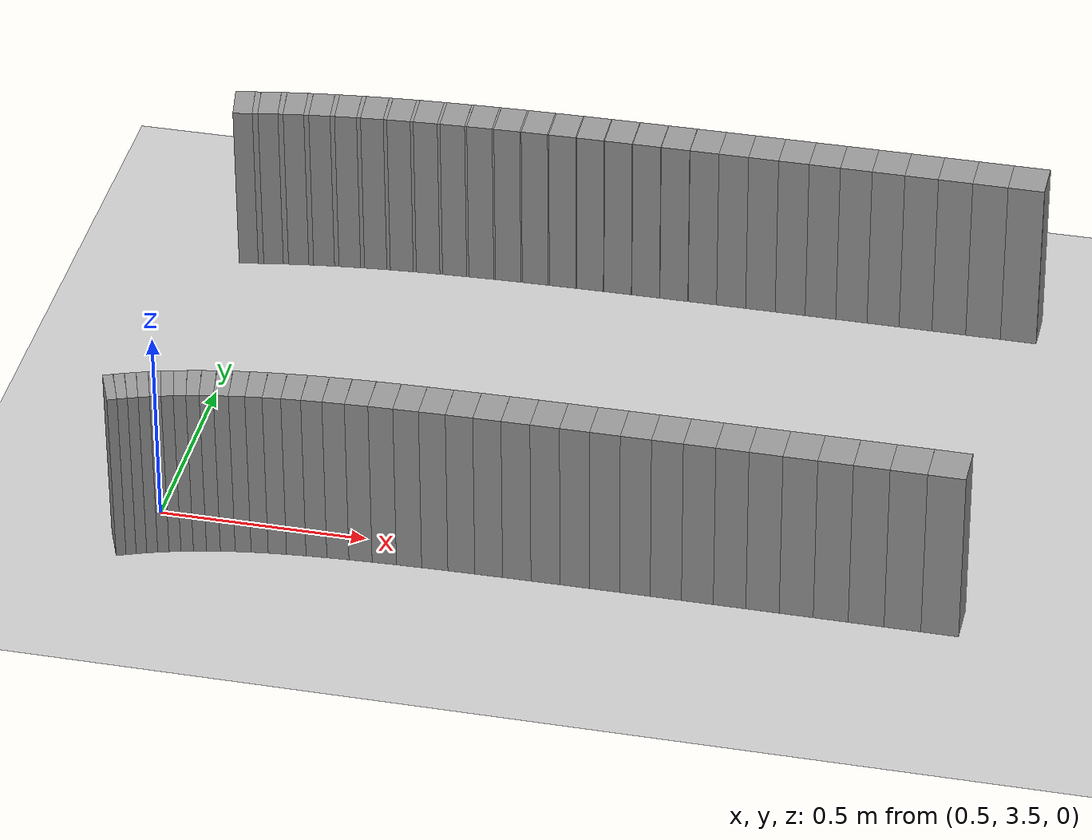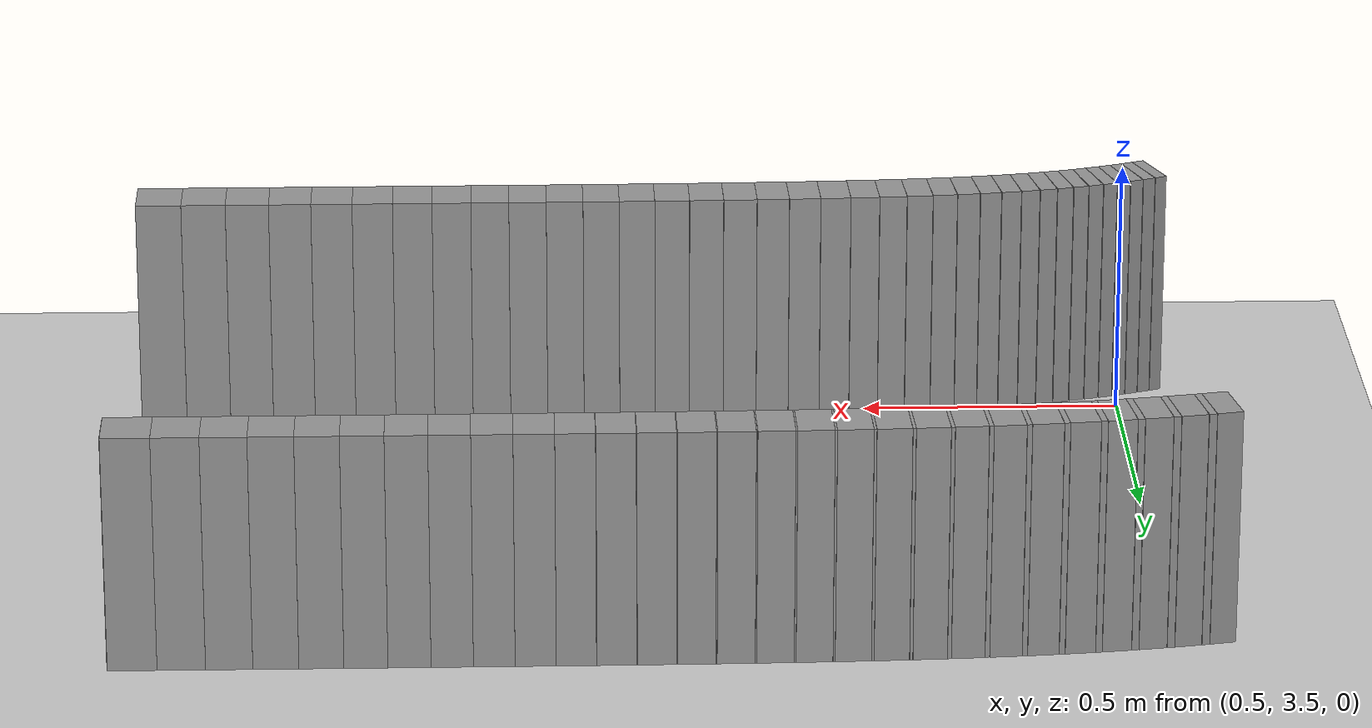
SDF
<sdf version="1.6">
 <world name="default">
  <include><uri>model://ground_plane</uri></include>
  <include><uri>model://sun</uri></include>
  <model name="wall_865_outward">
   <static>true</static>
   <link name="link">
    <collision name="collision">
     <geometry><box><size>0.08814726588899825 0.1 0.45</size></box></geometry>
    </collision>
    <visual name="visual">
     <geometry><box><size>0.08814726588899825 0.1 0.45</size></box></geometry>
     <material>
      <script><uri>file://media/materials/scripts/gazebo.material</uri><name>Gazebo/Gray</name></script>
     </material>
    </visual>
   </link>
   <pose>2.380222227202153 3.4742390977245243 0.225 0 0 3.1385229642362384</pose>
  </model>
  <model name="wall_866_outward">
   <static>true</static>
   <link name="link">
    <collision name="collision">
     <geometry><box><size>0.08610109189699643 0.1 0.45</size></box></geometry>
    </collision>
    <visual name="visual">
     <geometry><box><size>0.08610109189699643 0.1 0.45</size></box></geometry>
     <material>
      <script><uri>file://media/materials/scripts/gazebo.material</uri><name>Gazebo/Gray</name></script>
     </material>
    </visual>
   </link>
   <pose>2.2930983647943046 3.474471191679582 0.225 0 0 3.139344090066347</pose>
  </model>
  <model name="wall_867_outward">
   <static>true</static>
   <link name="link">
    <collision name="collision">
     <geometry><box><size>0.08406678609195667 0.1 0.45</size></box></geometry>
    </collision>
    <visual name="visual">
     <geometry><box><size>0.08406678609195667 0.1 0.45</size></box></geometry>
     <material>
      <script><uri>file://media/materials/scripts/gazebo.material</uri><name>Gazebo/Gray</name></script>
     </material>
    </visual>
   </link>
   <pose>2.2080145882157503 3.4746351096457238 0.225 0 0 3.139995918611105</pose>
  </model>
  <model name="wall_868_outward">
   <static>true</static>
   <link name="link">
    <collision name="collision">
     <geometry><box><size>0.08209183883756536 0.1 0.45</size></box></geometry>
    </collision>
    <visual name="visual">
     <geometry><box><size>0.08209183883756536 0.1 0.45</size></box></geometry>
     <material>
      <script><uri>file://media/materials/scripts/gazebo.material</uri><name>Gazebo/Gray</name></script>
     </material>
    </visual>
   </link>
   <pose>2.124935352999141 3.4747463017034472 0.225 0 0 3.1405188341605306</pose>
  </model>
  <model name="wall_869_outward">
   <static>true</static>
   <link name="link">
    <collision name="collision">
     <geometry><box><size>0.08021964719305823 0.1 0.45</size></box></geometry>
    </collision>
    <visual name="visual">
     <geometry><box><size>0.08021964719305823 0.1 0.45</size></box></geometry>
     <material>
      <script><uri>file://media/materials/scripts/gazebo.material</uri><name>Gazebo/Gray</name></script>
     </material>
    </visual>
   </link>
   <pose>2.0437796415892513 3.474815616370142 0.225 0 0 3.140963411952609</pose>
  </model>
  <model name="wall_870_outward">
   <static>true</static>
   <link name="link">
    <collision name="collision">
     <geometry><box><size>0.07847755730165017 0.1 0.45</size></box></geometry>
    </collision>
    <visual name="visual">
     <geometry><box><size>0.07847755730165017 0.1 0.45</size></box></geometry>
     <material>
      <script><uri>file://media/materials/scripts/gazebo.material</uri><name>Gazebo/Gray</name></script>
     </material>
    </visual>
   </link>
   <pose>1.9644310484204572 3.474850305059705 0.225 0 0 3.141351822438117</pose>
  </model>
  <model name="wall_871_outward">
   <static>true</static>
   <link name="link">
    <collision name="collision">
     <geometry><box><size>0.07687323410762861 0.1 0.45</size></box></geometry>
    </collision>
    <visual name="visual">
     <geometry><box><size>0.07687323410762861 0.1 0.45</size></box></geometry>
     <material>
      <script><uri>file://media/materials/scripts/gazebo.material</uri><name>Gazebo/Gray</name></script>
     </material>
    </visual>
   </link>
   <pose>1.8867556542720858 3.4748540840059294 0.225 0 0 -3.1414451126667786</pose>
  </model>
  <model name="wall_872_outward">
   <static>true</static>
   <link name="link">
    <collision name="collision">
     <geometry><box><size>0.07540982449161798 0.1 0.45</size></box></geometry>
    </collision>
    <visual name="visual">
     <geometry><box><size>0.07540982449161798 0.1 0.45</size></box></geometry>
     <material>
      <script><uri>file://media/materials/scripts/gazebo.material</uri><name>Gazebo/Gray</name></script>
     </material>
    </visual>
   </link>
   <pose>1.8106141318749573 3.474826300407479 0.225 0 0 -3.1410061882073346</pose>
  </model>
  <model name="wall_873_outward">
   <static>true</static>
   <link name="link">
    <collision name="collision">
     <geometry><box><size>0.07406763509247889 0.1 0.45</size></box></geometry>
    </collision>
    <visual name="visual">
     <geometry><box><size>0.07406763509247889 0.1 0.45</size></box></geometry>
     <material>
      <script><uri>file://media/materials/scripts/gazebo.material</uri><name>Gazebo/Gray</name></script>
     </material>
    </visual>
   </link>
   <pose>1.7358754321458298 3.4747623975490964 0.225 0 0 -3.1404642189452616</pose>
  </model>
  <model name="wall_874_outward">
   <static>true</static>
   <link name="link">
    <collision name="collision">
     <geometry><box><size>0.07282101729407345 0.1 0.45</size></box></geometry>
    </collision>
    <visual name="visual">
     <geometry><box><size>0.07282101729407345 0.1 0.45</size></box></geometry>
     <material>
      <script><uri>file://media/materials/scripts/gazebo.material</uri><name>Gazebo/Gray</name></script>
     </material>
    </visual>
   </link>
   <pose>1.6624311921575687 3.474653075822646 0.225 0 0 -3.1397379271987416</pose>
  </model>
  <model name="wall_875_outward">
   <static>true</static>
   <link name="link">
    <collision name="collision">
     <geometry><box><size>0.0716305171560759 0.1 0.45</size></box></geometry>
    </collision>
    <visual name="visual">
     <geometry><box><size>0.0716305171560759 0.1 0.45</size></box></geometry>
     <material>
      <script><uri>file://media/materials/scripts/gazebo.material</uri><name>Gazebo/Gray</name></script>
     </material>
    </visual>
   </link>
   <pose>1.5902056308034038 3.4744842493679564 0.225 0 0 -3.1387643870582966</pose>
  </model>
  <model name="wall_876_outward">
   <static>true</static>
   <link name="link">
    <collision name="collision">
     <geometry><box><size>0.07044924764524253 0.1 0.45</size></box></geometry>
    </collision>
    <visual name="visual">
     <geometry><box><size>0.07044924764524253 0.1 0.45</size></box></geometry>
     <material>
      <script><uri>file://media/materials/scripts/gazebo.material</uri><name>Gazebo/Gray</name></script>
     </material>
    </visual>
   </link>
   <pose>1.519166197084565 3.474236265196743 0.225 0 0 -3.1374282476381024</pose>
  </model>
  <model name="wall_877_outward">
   <static>true</static>
   <link name="link">
    <collision name="collision">
     <geometry><box><size>0.06923007070671246 0.1 0.45</size></box></geometry>
    </collision>
    <visual name="visual">
     <geometry><box><size>0.06923007070671246 0.1 0.45</size></box></geometry>
     <material>
      <script><uri>file://media/materials/scripts/gazebo.material</uri><name>Gazebo/Gray</name></script>
     </material>
    </visual>
   </link>
   <pose>1.4493274575164872 3.4738833753395157 0.225 0 0 -3.135635650641271</pose>
  </model>
  <model name="wall_878_outward">
   <static>true</static>
   <link name="link">
    <collision name="collision">
     <geometry><box><size>0.06791474529747309 0.1 0.45</size></box></geometry>
    </collision>
    <visual name="visual">
     <geometry><box><size>0.06791474529747309 0.1 0.45</size></box></geometry>
     <material>
      <script><uri>file://media/materials/scripts/gazebo.material</uri><name>Gazebo/Gray</name></script>
     </material>
    </visual>
   </link>
   <pose>1.38075684833437 3.4733935309941524 0.225 0 0 -3.1332396223157506</pose>
  </model>
  <model name="wall_879_outward">
   <static>true</static>
   <link name="link">
    <collision name="collision">
     <geometry><box><size>0.06646164676676616 0.1 0.45</size></box></geometry>
    </collision>
    <visual name="visual">
     <geometry><box><size>0.06646164676676616 0.1 0.45</size></box></geometry>
     <material>
      <script><uri>file://media/materials/scripts/gazebo.material</uri><name>Gazebo/Gray</name></script>
     </material>
    </visual>
   </link>
   <pose>1.3135720338396217 3.4727277826284513 0.225 0 0 -3.1300938988168046</pose>
  </model>
  <model name="wall_880_outward">
   <static>true</static>
   <link name="link">
    <collision name="collision">
     <geometry><box><size>0.0648284808082867 0.1 0.45</size></box></geometry>
    </collision>
    <visual name="visual">
     <geometry><box><size>0.0648284808082867 0.1 0.45</size></box></geometry>
     <material>
      <script><uri>file://media/materials/scripts/gazebo.material</uri><name>Gazebo/Gray</name></script>
     </material>
    </visual>
   </link>
   <pose>1.247933090677944 3.471841342200196 0.225 0 0 -3.1260329457450857</pose>
  </model>
  <model name="wall_881_outward">
   <static>true</static>
   <link name="link">
    <collision name="collision">
     <geometry><box><size>0.06297823563730758 0.1 0.45</size></box></geometry>
    </collision>
    <visual name="visual">
     <geometry><box><size>0.06297823563730758 0.1 0.45</size></box></geometry>
     <material>
      <script><uri>file://media/materials/scripts/gazebo.material</uri><name>Gazebo/Gray</name></script>
     </material>
    </visual>
   </link>
   <pose>1.184040410342023 3.4706848417528566 0.225 0 0 -3.12088037694755</pose>
  </model>
  <model name="wall_882_outward">
   <static>true</static>
   <link name="link">
    <collision name="collision">
     <geometry><box><size>0.060891050665584416 0.1 0.45</size></box></geometry>
    </collision>
    <visual name="visual">
     <geometry><box><size>0.060891050665584416 0.1 0.45</size></box></geometry>
     <material>
      <script><uri>file://media/materials/scripts/gazebo.material</uri><name>Gazebo/Gray</name></script>
     </material>
    </visual>
   </link>
   <pose>1.122123752488555 3.469205785106139 0.225 0 0 -3.114429592896092</pose>
  </model>
  <model name="wall_883_outward">
   <static>true</static>
   <link name="link">
    <collision name="collision">
     <geometry><box><size>0.05856185348694866 0.1 0.45</size></box></geometry>
    </collision>
    <visual name="visual">
     <geometry><box><size>0.05856185348694866 0.1 0.45</size></box></geometry>
     <material>
      <script><uri>file://media/materials/scripts/gazebo.material</uri><name>Gazebo/Gray</name></script>
     </material>
    </visual>
   </link>
   <pose>1.0624265653836569 3.4673513870126396 0.225 0 0 -3.1064941357454354</pose>
  </model>
  <model name="wall_884_outward">
   <static>true</static>
   <link name="link">
    <collision name="collision">
     <geometry><box><size>0.056002091373404554 0.1 0.45</size></box></geometry>
    </collision>
    <visual name="visual">
     <geometry><box><size>0.056002091373404554 0.1 0.45</size></box></geometry>
     <material>
      <script><uri>file://media/materials/scripts/gazebo.material</uri><name>Gazebo/Gray</name></script>
     </material>
    </visual>
   </link>
   <pose>1.0051906216219983 3.4650720876806678 0.225 0 0 -3.096872518828695</pose>
  </model>
  <model name="wall_885_outward">
   <static>true</static>
   <link name="link">
    <collision name="collision">
     <geometry><box><size>0.053244198982560914 0.1 0.45</size></box></geometry>
    </collision>
    <visual name="visual">
     <geometry><box><size>0.053244198982560914 0.1 0.45</size></box></geometry>
     <material>
      <script><uri>file://media/materials/scripts/gazebo.material</uri><name>Gazebo/Gray</name></script>
     </material>
    </visual>
   </link>
   <pose>0.9506374803704174 3.4623253111802317 0.225 0 0 -3.0854073722569035</pose>
  </model>
  <model name="wall_886_outward">
   <static>true</static>
   <link name="link">
    <collision name="collision">
     <geometry><box><size>0.050334506872166236 0.1 0.45</size></box></geometry>
    </collision>
    <visual name="visual">
     <geometry><box><size>0.050334506872166236 0.1 0.45</size></box></geometry>
     <material>
      <script><uri>file://media/materials/scripts/gazebo.material</uri><name>Gazebo/Gray</name></script>
     </material>
    </visual>
   </link>
   <pose>0.8989511349970929 3.4590791547636774 0.225 0 0 -3.0719549683346576</pose>
  </model>
  <model name="wall_887_outward">
   <static>true</static>
   <link name="link">
    <collision name="collision">
     <geometry><box><size>0.047342373089024746 0.1 0.45</size></box></geometry>
    </collision>
    <visual name="visual">
     <geometry><box><size>0.047342373089024746 0.1 0.45</size></box></geometry>
     <material>
      <script><uri>file://media/materials/scripts/gazebo.material</uri><name>Gazebo/Gray</name></script>
     </material>
    </visual>
   </link>
   <pose>0.8502594513527232 3.455314868062165 0.225 0 0 -3.0564449064776067</pose>
  </model>
  <model name="wall_888_outward">
   <static>true</static>
   <link name="link">
    <collision name="collision">
     <geometry><box><size>0.04434472673511183 0.1 0.45</size></box></geometry>
    </collision>
    <visual name="visual">
     <geometry><box><size>0.04434472673511183 0.1 0.45</size></box></geometry>
     <material>
      <script><uri>file://media/materials/scripts/gazebo.material</uri><name>Gazebo/Gray</name></script>
     </material>
    </visual>
   </link>
   <pose>0.8046185366642273 3.451028159454455 0.225 0 0 -3.0388702525209412</pose>
  </model>
  <model name="wall_889_outward">
   <static>true</static>
   <link name="link">
    <collision name="collision">
     <geometry><box><size>0.04142713516056422 0.1 0.45</size></box></geometry>
    </collision>
    <visual name="visual">
     <geometry><box><size>0.04142713516056422 0.1 0.45</size></box></geometry>
     <material>
      <script><uri>file://media/materials/scripts/gazebo.material</uri><name>Gazebo/Gray</name></script>
     </material>
    </visual>
   </link>
   <pose>0.7620041098598511 3.4462283349957445 0.225 0 0 -3.019328134915004</pose>
  </model>
  <model name="wall_890_outward">
   <static>true</static>
   <link name="link">
    <collision name="collision">
     <geometry><box><size>0.038671987007682394 0.1 0.45</size></box></geometry>
    </collision>
    <visual name="visual">
     <geometry><box><size>0.038671987007682394 0.1 0.45</size></box></geometry>
     <material>
      <script><uri>file://media/materials/scripts/gazebo.material</uri><name>Gazebo/Gray</name></script>
     </material>
    </visual>
   </link>
   <pose>0.7223081973423724 3.440934984638207 0.225 0 0 -2.9979923778146462</pose>
  </model>
  <model name="wall_891_outward">
   <static>true</static>
   <link name="link">
    <collision name="collision">
     <geometry><box><size>0.03615201267646341 0.1 0.45</size></box></geometry>
    </collision>
    <visual name="visual">
     <geometry><box><size>0.03615201267646341 0.1 0.45</size></box></geometry>
     <material>
      <script><uri>file://media/materials/scripts/gazebo.material</uri><name>Gazebo/Gray</name></script>
     </material>
    </visual>
   </link>
   <pose>0.6853450413730331 3.4351730080904375 0.225 0 0 -2.9751438679981823</pose>
  </model>
  <model name="wall_892_outward">
   <static>true</static>
   <link name="link">
    <collision name="collision">
     <geometry><box><size>0.03392593604339044 0.1 0.45</size></box></geometry>
    </collision>
    <visual name="visual">
     <geometry><box><size>0.03392593604339044 0.1 0.45</size></box></geometry>
     <material>
      <script><uri>file://media/materials/scripts/gazebo.material</uri><name>Gazebo/Gray</name></script>
     </material>
    </visual>
   </link>
   <pose>0.6508626301546203 3.4289668618690192 0.225 0 0 -2.9511313933653516</pose>
  </model>
  <model name="wall_893_outward">
   <static>true</static>
   <link name="link">
    <collision name="collision">
     <geometry><box><size>0.03201261778673584 0.1 0.45</size></box></geometry>
    </collision>
    <visual name="visual">
     <geometry><box><size>0.03201261778673584 0.1 0.45</size></box></geometry>
     <material>
      <script><uri>file://media/materials/scripts/gazebo.material</uri><name>Gazebo/Gray</name></script>
     </material>
    </visual>
   </link>
   <pose>0.6185693362083204 3.4223373757393283 0.225 0 0 -2.9263822162608992</pose>
  </model>
  <model name="wall_894_outward">
   <static>true</static>
   <link name="link">
    <collision name="collision">
     <geometry><box><size>0.030405992266613144 0.1 0.45</size></box></geometry>
    </collision>
    <visual name="visual">
     <geometry><box><size>0.030405992266613144 0.1 0.45</size></box></geometry>
     <material>
      <script><uri>file://media/materials/scripts/gazebo.material</uri><name>Gazebo/Gray</name></script>
     </material>
    </visual>
   </link>
   <pose>0.5881661216257676 3.415300896584763 0.225 0 0 -2.9012884889778827</pose>
  </model>
  <model name="wall_895_outward">
   <static>true</static>
   <link name="link">
    <collision name="collision">
     <geometry><box><size>0.029075045051389418 0.1 0.45</size></box></geometry>
    </collision>
    <visual name="visual">
     <geometry><box><size>0.029075045051389418 0.1 0.45</size></box></geometry>
     <material>
      <script><uri>file://media/materials/scripts/gazebo.material</uri><name>Gazebo/Gray</name></script>
     </material>
    </visual>
   </link>
   <pose>0.5593711948561099 3.4078704067380277 0.225 0 0 -2.876258046377365</pose>
  </model>
  <model name="wall_896_outward">
   <static>true</static>
   <link name="link">
    <collision name="collision">
     <geometry><box><size>0.027952202482216113 0.1 0.45</size></box></geometry>
    </collision>
    <visual name="visual">
     <geometry><box><size>0.027952202482216113 0.1 0.45</size></box></geometry>
     <material>
      <script><uri>file://media/materials/scripts/gazebo.material</uri><name>Gazebo/Gray</name></script>
     </material>
    </visual>
   </link>
   <pose>0.5319498568132395 3.4000618556043123 0.225 0 0 -2.851604028873288</pose>
  </model>
  <model name="wall_897_outward">
   <static>true</static>
   <link name="link">
    <collision name="collision">
     <geometry><box><size>0.026958116709717265 0.1 0.45</size></box></geometry>
    </collision>
    <visual name="visual">
     <geometry><box><size>0.026958116709717265 0.1 0.45</size></box></geometry>
     <material>
      <script><uri>file://media/materials/scripts/gazebo.material</uri><name>Gazebo/Gray</name></script>
     </material>
    </visual>
   </link>
   <pose>0.5057374786185143 3.391901708732245 0.225 0 0 -2.8275469747699975</pose>
  </model>
  <model name="wall_898_outward">
   <static>true</static>
   <link name="link">
    <collision name="collision">
     <geometry><box><size>0.02600844147542664 0.1 0.45</size></box></geometry>
    </collision>
    <visual name="visual">
     <geometry><box><size>0.02600844147542664 0.1 0.45</size></box></geometry>
     <material>
      <script><uri>file://media/materials/scripts/gazebo.material</uri><name>Gazebo/Gray</name></script>
     </material>
    </visual>
   </link>
   <pose>0.4806466952528248 3.383432886637009 0.225 0 0 -2.804178763619001</pose>
  </model>
  <model name="wall_899_outward">
   <static>true</static>
   <link name="link">
    <collision name="collision">
     <geometry><box><size>0.02501917564471886 0.1 0.45</size></box></geometry>
    </collision>
    <visual name="visual">
     <geometry><box><size>0.02501917564471886 0.1 0.45</size></box></geometry>
     <material>
      <script><uri>file://media/materials/scripts/gazebo.material</uri><name>Gazebo/Gray</name></script>
     </material>
    </visual>
   </link>
   <pose>0.45666854871338847 3.374719730211046 0.225 0 0 -2.7814789788163186</pose>
  </model>
  <model name="wall_900_outward">
   <static>true</static>
   <link name="link">
    <collision name="collision">
     <geometry><box><size>0.023902431367806332 0.1 0.45</size></box></geometry>
    </collision>
    <visual name="visual">
     <geometry><box><size>0.023902431367806332 0.1 0.45</size></box></geometry>
     <material>
      <script><uri>file://media/materials/scripts/gazebo.material</uri><name>Gazebo/Gray</name></script>
     </material>
    </visual>
   </link>
   <pose>0.4338729057896477 3.3658531635231284 0.225 0 0 -2.759295840561206</pose>
  </model>
  <model name="wall_1321_inward">
   <static>true</static>
   <link name="link">
    <collision name="collision">
     <geometry><box><size>0.0006151252399890579 0.1 0.45</size></box></geometry>
    </collision>
    <visual name="visual">
     <geometry><box><size>0.0006151252399890579 0.1 0.45</size></box></geometry>
     <material>
      <script><uri>file://media/materials/scripts/gazebo.material</uri><name>Gazebo/Gray</name></script>
     </material>
    </visual>
   </link>
   <pose>2.4285943957907854 4.674096105886349 0.225 0 0 3.1380103598459526</pose>
  </model>
  <model name="wall_1322_inward">
   <static>true</static>
   <link name="link">
    <collision name="collision">
     <geometry><box><size>0.08919384175511642 0.1 0.45</size></box></geometry>
    </collision>
    <visual name="visual">
     <geometry><box><size>0.08919384175511642 0.1 0.45</size></box></geometry>
     <material>
      <script><uri>file://media/materials/scripts/gazebo.material</uri><name>Gazebo/Gray</name></script>
     </material>
    </visual>
   </link>
   <pose>2.3836901240744006 4.674234005005198 0.225 0 0 3.1385252320416623</pose>
  </model>
  <model name="wall_1323_inward">
   <static>true</static>
   <link name="link">
    <collision name="collision">
     <geometry><box><size>0.08693407532928187 0.1 0.45</size></box></geometry>
    </collision>
    <visual name="visual">
     <geometry><box><size>0.08693407532928187 0.1 0.45</size></box></geometry>
     <material>
      <script><uri>file://media/materials/scripts/gazebo.material</uri><name>Gazebo/Gray</name></script>
     </material>
    </visual>
   </link>
   <pose>2.2956264850821126 4.674468476927855 0.225 0 0 3.1393455562823283</pose>
  </model>
  <model name="wall_1324_inward">
   <static>true</static>
   <link name="link">
    <collision name="collision">
     <geometry><box><size>0.08473295864588376 0.1 0.45</size></box></geometry>
    </collision>
    <visual name="visual">
     <geometry><box><size>0.08473295864588376 0.1 0.45</size></box></geometry>
     <material>
      <script><uri>file://media/materials/scripts/gazebo.material</uri><name>Gazebo/Gray</name></script>
     </material>
    </visual>
   </link>
   <pose>2.2097931317792323 4.67463375850362 0.225 0 0 3.139996886737335</pose>
  </model>
  <model name="wall_1325_inward">
   <static>true</static>
   <link name="link">
    <collision name="collision">
     <geometry><box><size>0.08264883351268201 0.1 0.45</size></box></geometry>
    </collision>
    <visual name="visual">
     <geometry><box><size>0.08264883351268201 0.1 0.45</size></box></geometry>
     <material>
      <script><uri>file://media/materials/scripts/gazebo.material</uri><name>Gazebo/Gray</name></script>
     </material>
    </visual>
   </link>
   <pose>2.1261023134359816 4.674745710803979 0.225 0 0 3.1405195515913853</pose>
  </model>
  <model name="wall_1326_inward">
   <static>true</static>
   <link name="link">
    <collision name="collision">
     <geometry><box><size>0.08070258996507251 0.1 0.45</size></box></geometry>
    </collision>
    <visual name="visual">
     <geometry><box><size>0.08070258996507251 0.1 0.45</size></box></geometry>
     <material>
      <script><uri>file://media/materials/scripts/gazebo.material</uri><name>Gazebo/Gray</name></script>
     </material>
    </visual>
   </link>
   <pose>2.0444266334648393 4.674815424193513 0.225 0 0 3.1409639727624943</pose>
  </model>
  <model name="wall_1327_inward">
   <static>true</static>
   <link name="link">
    <collision name="collision">
     <geometry><box><size>0.07894361531124201 0.1 0.45</size></box></geometry>
    </collision>
    <visual name="visual">
     <geometry><box><size>0.07894361531124201 0.1 0.45</size></box></geometry>
     <material>
      <script><uri>file://media/materials/scripts/gazebo.material</uri><name>Gazebo/Gray</name></script>
     </material>
    </visual>
   </link>
   <pose>1.9646035399401292 4.674850275693229 0.225 0 0 3.14135239563027</pose>
  </model>
  <model name="wall_1328_inward">
   <static>true</static>
   <link name="link">
    <collision name="collision">
     <geometry><box><size>0.07738477773978021 0.1 0.45</size></box></geometry>
    </collision>
    <visual name="visual">
     <geometry><box><size>0.07738477773978021 0.1 0.45</size></box></geometry>
     <material>
      <script><uri>file://media/materials/scripts/gazebo.material</uri><name>Gazebo/Gray</name></script>
     </material>
    </visual>
   </link>
   <pose>1.8864393449792598 4.674854021500156 0.225 0 0 -3.1414443657963393</pose>
  </model>
  <model name="wall_1329_inward">
   <static>true</static>
   <link name="link">
    <collision name="collision">
     <geometry><box><size>0.07602927415489141 0.1 0.45</size></box></geometry>
    </collision>
    <visual name="visual">
     <geometry><box><size>0.07602927415489141 0.1 0.45</size></box></geometry>
     <material>
      <script><uri>file://media/materials/scripts/gazebo.material</uri><name>Gazebo/Gray</name></script>
     </material>
    </visual>
   </link>
   <pose>1.809732326020606 4.67482594556422 0.225 0 0 -3.141005029190585</pose>
  </model>
  <model name="wall_1330_inward">
   <static>true</static>
   <link name="link">
    <collision name="collision">
     <geometry><box><size>0.07488388841882353 0.1 0.45</size></box></geometry>
    </collision>
    <visual name="visual">
     <geometry><box><size>0.07488388841882353 0.1 0.45</size></box></geometry>
     <material>
      <script><uri>file://media/materials/scripts/gazebo.material</uri><name>Gazebo/Gray</name></script>
     </material>
    </visual>
   </link>
   <pose>1.734275775225016 4.674761277334293 0.225 0 0 -3.1404621056748843</pose>
  </model>
  <model name="wall_1331_inward">
   <static>true</static>
   <link name="link">
    <collision name="collision">
     <geometry><box><size>0.07391509088499058 0.1 0.45</size></box></geometry>
    </collision>
    <visual name="visual">
     <geometry><box><size>0.07391509088499058 0.1 0.45</size></box></geometry>
     <material>
      <script><uri>file://media/materials/scripts/gazebo.material</uri><name>Gazebo/Gray</name></script>
     </material>
    </visual>
   </link>
   <pose>1.6598763733322017 4.674650259168969 0.225 0 0 -3.1397340804321874</pose>
  </model>
  <model name="wall_1332_inward">
   <static>true</static>
   <link name="link">
    <collision name="collision">
     <geometry><box><size>0.07232342110671154 0.1 0.45</size></box></geometry>
    </collision>
    <visual name="visual">
     <geometry><box><size>0.07232342110671154 0.1 0.45</size></box></geometry>
     <material>
      <script><uri>file://media/materials/scripts/gazebo.material</uri><name>Gazebo/Gray</name></script>
     </material>
    </visual>
   </link>
   <pose>1.58675732579777 4.674479296087254 0.225 0 0 -3.138764387058296</pose>
  </model>
  <model name="wall_1333_inward">
   <static>true</static>
   <link name="link">
    <collision name="collision">
     <geometry><box><size>0.0008016835924816821 0.1 0.45</size></box></geometry>
    </collision>
    <visual name="visual">
     <geometry><box><size>0.0008016835924816821 0.1 0.45</size></box></geometry>
     <material>
      <script><uri>file://media/materials/scripts/gazebo.material</uri><name>Gazebo/Gray</name></script>
     </material>
    </visual>
   </link>
   <pose>1.5501949205285104 4.674375619793082 0.225 0 0 -3.1380963173488214</pose>
  </model>
  <model name="wall_1334_inward">
   <static>true</static>
   <link name="link">
    <collision name="collision">
     <geometry><box><size>0.07138786877435413 0.1 0.45</size></box></geometry>
    </collision>
    <visual name="visual">
     <geometry><box><size>0.07138786877435413 0.1 0.45</size></box></geometry>
     <material>
      <script><uri>file://media/materials/scripts/gazebo.material</uri><name>Gazebo/Gray</name></script>
     </material>
    </visual>
   </link>
   <pose>1.5141004563017089 4.6742255747150745 0.225 0 0 -3.137428247638103</pose>
  </model>
  <model name="wall_1335_inward">
   <static>true</static>
   <link name="link">
    <collision name="collision">
     <geometry><box><size>0.001075558054092299 0.1 0.45</size></box></geometry>
    </collision>
    <visual name="visual">
     <geometry><box><size>0.001075558054092299 0.1 0.45</size></box></geometry>
     <material>
      <script><uri>file://media/materials/scripts/gazebo.material</uri><name>Gazebo/Gray</name></script>
     </material>
    </visual>
   </link>
   <pose>1.4778690592805277 4.6740742095828125 0.225 0 0 -3.1365319491398007</pose>
  </model>
  <model name="wall_1336_inward">
   <static>true</static>
   <link name="link">
    <collision name="collision">
     <geometry><box><size>0.07048665879119392 0.1 0.45</size></box></geometry>
    </collision>
    <visual name="visual">
     <geometry><box><size>0.07048665879119392 0.1 0.45</size></box></geometry>
     <material>
      <script><uri>file://media/materials/scripts/gazebo.material</uri><name>Gazebo/Gray</name></script>
     </material>
    </visual>
   </link>
   <pose>1.4420885830628287 4.673861544678264 0.225 0 0 -3.135635650641268</pose>
  </model>
  <model name="wall_1337_inward">
   <static>true</static>
   <link name="link">
    <collision name="collision">
     <geometry><box><size>0.0014376166514237306 0.1 0.45</size></box></geometry>
    </collision>
    <visual name="visual">
     <geometry><box><size>0.0014376166514237306 0.1 0.45</size></box></geometry>
     <material>
      <script><uri>file://media/materials/scripts/gazebo.material</uri><name>Gazebo/Gray</name></script>
     </material>
    </visual>
   </link>
   <pose>1.4061270890593778 4.673646458260827 0.225 0 0 -3.1344376364781152</pose>
  </model>
  <model name="wall_1338_inward">
   <static>true</static>
   <link name="link">
    <collision name="collision">
     <geometry><box><size>0.06957727196702529 0.1 0.45</size></box></geometry>
    </collision>
    <visual name="visual">
     <geometry><box><size>0.06957727196702529 0.1 0.45</size></box></geometry>
     <material>
      <script><uri>file://media/materials/scripts/gazebo.material</uri><name>Gazebo/Gray</name></script>
     </material>
    </visual>
   </link>
   <pose>1.3706208767984878 4.673350728033712 0.225 0 0 -3.13323962231575</pose>
  </model>
  <model name="wall_1339_inward">
   <static>true</static>
   <link name="link">
    <collision name="collision">
     <geometry><box><size>0.0018874333211485606 0.1 0.45</size></box></geometry>
    </collision>
    <visual name="visual">
     <geometry><box><size>0.0018874333211485606 0.1 0.45</size></box></geometry>
     <material>
      <script><uri>file://media/materials/scripts/gazebo.material</uri><name>Gazebo/Gray</name></script>
     </material>
    </visual>
   </link>
   <pose>1.3348897842920628 4.673050773771781 0.225 0 0 -3.1316667605666053</pose>
  </model>
  <model name="wall_1340_inward">
   <static>true</static>
   <link name="link">
    <collision name="collision">
     <geometry><box><size>0.06862365219043695 0.1 0.45</size></box></geometry>
    </collision>
    <visual name="visual">
     <geometry><box><size>0.06862365219043695 0.1 0.45</size></box></geometry>
     <material>
      <script><uri>file://media/materials/scripts/gazebo.material</uri><name>Gazebo/Gray</name></script>
     </material>
    </visual>
   </link>
   <pose>1.299636556378137 4.672646872115347 0.225 0 0 -3.130093898816805</pose>
  </model>
  <model name="wall_1341_inward">
   <static>true</static>
   <link name="link">
    <collision name="collision">
     <geometry><box><size>0.0024365701687680775 0.1 0.45</size></box></geometry>
    </collision>
    <visual name="visual">
     <geometry><box><size>0.0024365701687680775 0.1 0.45</size></box></geometry>
     <material>
      <script><uri>file://media/materials/scripts/gazebo.material</uri><name>Gazebo/Gray</name></script>
     </material>
    </visual>
   </link>
   <pose>1.2641088250475296 4.672235855577829 0.225 0 0 -3.128063422280649</pose>
  </model>
  <model name="wall_1342_inward">
   <static>true</static>
   <link name="link">
    <collision name="collision">
     <geometry><box><size>0.06759254246309836 0.1 0.45</size></box></geometry>
    </collision>
    <visual name="visual">
     <geometry><box><size>0.06759254246309836 0.1 0.45</size></box></geometry>
     <material>
      <script><uri>file://media/materials/scripts/gazebo.material</uri><name>Gazebo/Gray</name></script>
     </material>
    </visual>
   </link>
   <pose>1.2290984712596813 4.671693534731933 0.225 0 0 -3.1260329457450857</pose>
  </model>
  <model name="wall_1343_inward">
   <static>true</static>
   <link name="link">
    <collision name="collision">
     <geometry><box><size>0.003091537858637406 0.1 0.45</size></box></geometry>
    </collision>
    <visual name="visual">
     <geometry><box><size>0.003091537858637406 0.1 0.45</size></box></geometry>
     <material>
      <script><uri>file://media/materials/scripts/gazebo.material</uri><name>Gazebo/Gray</name></script>
     </material>
    </visual>
   </link>
   <pose>1.193760776336806 4.671139663327384 0.225 0 0 -3.1234566613463226</pose>
  </model>
  <model name="wall_1344_inward">
   <static>true</static>
   <link name="link">
    <collision name="collision">
     <geometry><box><size>0.06645925162291637 0.1 0.45</size></box></geometry>
    </collision>
    <visual name="visual">
     <geometry><box><size>0.06645925162291637 0.1 0.45</size></box></geometry>
     <material>
      <script><uri>file://media/materials/scripts/gazebo.material</uri><name>Gazebo/Gray</name></script>
     </material>
    </visual>
   </link>
   <pose>1.158992763275151 4.670423418817759 0.225 0 0 -3.1208803769475515</pose>
  </model>
  <model name="wall_1345_inward">
   <static>true</static>
   <link name="link">
    <collision name="collision">
     <geometry><box><size>0.003870463720031205 0.1 0.45</size></box></geometry>
    </collision>
    <visual name="visual">
     <geometry><box><size>0.003870463720031205 0.1 0.45</size></box></geometry>
     <material>
      <script><uri>file://media/materials/scripts/gazebo.material</uri><name>Gazebo/Gray</name></script>
     </material>
    </visual>
   </link>
   <pose>1.1238355875061257 4.669688886309608 0.225 0 0 -3.117654984921912</pose>
  </model>
  <model name="wall_1346_inward">
   <static>true</static>
   <link name="link">
    <collision name="collision">
     <geometry><box><size>0.0652069422298244 0.1 0.45</size></box></geometry>
    </collision>
    <visual name="visual">
     <geometry><box><size>0.0652069422298244 0.1 0.45</size></box></geometry>
     <material>
      <script><uri>file://media/materials/scripts/gazebo.material</uri><name>Gazebo/Gray</name></script>
     </material>
    </visual>
   </link>
   <pose>1.0893094661606817 4.668757064631029 0.225 0 0 -3.114429592896089</pose>
  </model>
  <model name="wall_1347_inward">
   <static>true</static>
   <link name="link">
    <collision name="collision">
     <geometry><box><size>0.0047612617977133105 0.1 0.45</size></box></geometry>
    </collision>
    <visual name="visual">
     <geometry><box><size>0.0047612617977133105 0.1 0.45</size></box></geometry>
     <material>
      <script><uri>file://media/materials/scripts/gazebo.material</uri><name>Gazebo/Gray</name></script>
     </material>
    </visual>
   </link>
   <pose>1.0543385448198896 4.6677974645185625 0.225 0 0 -3.1104618643207</pose>
  </model>
  <model name="wall_1348_inward">
   <static>true</static>
   <link name="link">
    <collision name="collision">
     <geometry><box><size>0.06382901046826368 0.1 0.45</size></box></geometry>
    </collision>
    <visual name="visual">
     <geometry><box><size>0.06382901046826368 0.1 0.45</size></box></geometry>
     <material>
      <script><uri>file://media/materials/scripts/gazebo.material</uri><name>Gazebo/Gray</name></script>
     </material>
    </visual>
   </link>
   <pose>1.0200642179759951 4.666603443710946 0.225 0 0 -3.106494135745438</pose>
  </model>
  <model name="wall_1349_inward">
   <static>true</static>
   <link name="link">
    <collision name="collision">
     <geometry><box><size>0.005772947881919452 0.1 0.45</size></box></geometry>
    </collision>
    <visual name="visual">
     <geometry><box><size>0.005772947881919452 0.1 0.45</size></box></geometry>
     <material>
      <script><uri>file://media/materials/scripts/gazebo.material</uri><name>Gazebo/Gray</name></script>
     </material>
    </visual>
   </link>
   <pose>0.9852851930342943 4.665368355199616 0.225 0 0 -3.1016833272872026</pose>
  </model>
  <model name="wall_1350_inward">
   <static>true</static>
   <link name="link">
    <collision name="collision">
     <geometry><box><size>0.06232818036603177 0.1 0.45</size></box></geometry>
    </collision>
    <visual name="visual">
     <geometry><box><size>0.06232818036603177 0.1 0.45</size></box></geometry>
     <material>
      <script><uri>file://media/materials/scripts/gazebo.material</uri><name>Gazebo/Gray</name></script>
     </material>
    </visual>
   </link>
   <pose>0.9512680845172724 4.663859990716475 0.225 0 0 -3.09687251882868</pose>
  </model>
  <model name="wall_1351_inward">
   <static>true</static>
   <link name="link">
    <collision name="collision">
     <geometry><box><size>0.006879050265918137 0.1 0.45</size></box></geometry>
    </collision>
    <visual name="visual">
     <geometry><box><size>0.006879050265918137 0.1 0.45</size></box></geometry>
     <material>
      <script><uri>file://media/materials/scripts/gazebo.material</uri><name>Gazebo/Gray</name></script>
     </material>
    </visual>
   </link>
   <pose>0.9167000030768089 4.662293333140097 0.225 0 0 -3.0911399455428965</pose>
  </model>
  <model name="wall_1352_inward">
   <static>true</static>
   <link name="link">
    <collision name="collision">
     <geometry><box><size>0.06071956267070418 0.1 0.45</size></box></geometry>
    </collision>
    <visual name="visual">
     <geometry><box><size>0.06071956267070418 0.1 0.45</size></box></geometry>
     <material>
      <script><uri>file://media/materials/scripts/gazebo.material</uri><name>Gazebo/Gray</name></script>
     </material>
    </visual>
   </link>
   <pose>0.8829529803530972 4.660414997856956 0.225 0 0 -3.0854073722569013</pose>
  </model>
  <model name="wall_1353_inward">
   <static>true</static>
   <link name="link">
    <collision name="collision">
     <geometry><box><size>0.00807138149239345 0.1 0.45</size></box></geometry>
    </collision>
    <visual name="visual">
     <geometry><box><size>0.00807138149239345 0.1 0.45</size></box></geometry>
     <material>
      <script><uri>file://media/materials/scripts/gazebo.material</uri><name>Gazebo/Gray</name></script>
     </material>
    </visual>
   </link>
   <pose>0.8486133990358924 4.6584563984730885 0.225 0 0 -3.078681170295749</pose>
  </model>
  <model name="wall_1354_inward">
   <static>true</static>
   <link name="link">
    <collision name="collision">
     <geometry><box><size>0.05902340074868001 0.1 0.45</size></box></geometry>
    </collision>
    <visual name="visual">
     <geometry><box><size>0.05902340074868001 0.1 0.45</size></box></geometry>
     <material>
      <script><uri>file://media/materials/scripts/gazebo.material</uri><name>Gazebo/Gray</name></script>
     </material>
    </visual>
   </link>
   <pose>0.8151455198339509 4.656149208745962 0.225 0 0 -3.0719549683346634</pose>
  </model>
  <model name="wall_1355_inward">
   <static>true</static>
   <link name="link">
    <collision name="collision">
     <geometry><box><size>0.009305943836220411 0.1 0.45</size></box></geometry>
    </collision>
    <visual name="visual">
     <geometry><box><size>0.009305943836220411 0.1 0.45</size></box></geometry>
     <material>
      <script><uri>file://media/materials/scripts/gazebo.material</uri><name>Gazebo/Gray</name></script>
     </material>
    </visual>
   </link>
   <pose>0.781066303596941 4.653735996106649 0.225 0 0 -3.064199937406152</pose>
  </model>
  <model name="wall_1356_inward">
   <static>true</static>
   <link name="link">
    <collision name="collision">
     <geometry><box><size>0.05726801682426961 0.1 0.45</size></box></geometry>
    </collision>
    <visual name="visual">
     <geometry><box><size>0.05726801682426961 0.1 0.45</size></box></geometry>
     <material>
      <script><uri>file://media/materials/scripts/gazebo.material</uri><name>Gazebo/Gray</name></script>
     </material>
    </visual>
   </link>
   <pose>0.7478969886782126 4.650941073092614 0.225 0 0 -3.0564449064776054</pose>
  </model>
  <model name="wall_1357_inward">
   <static>true</static>
   <link name="link">
    <collision name="collision">
     <geometry><box><size>0.010544656668113682 0.1 0.45</size></box></geometry>
    </collision>
    <visual name="visual">
     <geometry><box><size>0.010544656668113682 0.1 0.45</size></box></geometry>
     <material>
      <script><uri>file://media/materials/scripts/gazebo.material</uri><name>Gazebo/Gray</name></script>
     </material>
    </visual>
   </link>
   <pose>0.7141176333828867 4.648011368304072 0.225 0 0 -3.0476575794992744</pose>
  </model>
  <model name="wall_1358_inward">
   <static>true</static>
   <link name="link">
    <collision name="collision">
     <geometry><box><size>0.055480080497212224 0.1 0.45</size></box></geometry>
    </collision>
    <visual name="visual">
     <geometry><box><size>0.055480080497212224 0.1 0.45</size></box></geometry>
     <material>
      <script><uri>file://media/materials/scripts/gazebo.material</uri><name>Gazebo/Gray</name></script>
     </material>
    </visual>
   </link>
   <pose>0.6812747349833177 4.6446723248980195 0.225 0 0 -3.038870252520942</pose>
  </model>
  <model name="wall_1359_inward">
   <static>true</static>
   <link name="link">
    <collision name="collision">
     <geometry><box><size>0.011725083988841867 0.1 0.45</size></box></geometry>
    </collision>
    <visual name="visual">
     <geometry><box><size>0.011725083988841867 0.1 0.45</size></box></geometry>
     <material>
      <script><uri>file://media/materials/scripts/gazebo.material</uri><name>Gazebo/Gray</name></script>
     </material>
    </visual>
   </link>
   <pose>0.6478554345251372 4.641169702478912 0.225 0 0 -3.029099193717979</pose>
  </model>
  <model name="wall_1360_inward">
   <static>true</static>
   <link name="link">
    <collision name="collision">
     <geometry><box><size>0.053690926974932746 0.1 0.45</size></box></geometry>
    </collision>
    <visual name="visual">
     <geometry><box><size>0.053690926974932746 0.1 0.45</size></box></geometry>
     <material>
      <script><uri>file://media/materials/scripts/gazebo.material</uri><name>Gazebo/Gray</name></script>
     </material>
    </visual>
   </link>
   <pose>0.6153848859119654 4.637237518658809 0.225 0 0 -3.019328134915002</pose>
  </model>
  <model name="wall_1361_inward">
   <static>true</static>
   <link name="link">
    <collision name="collision">
     <geometry><box><size>0.012801211452928044 0.1 0.45</size></box></geometry>
    </collision>
    <visual name="visual">
     <geometry><box><size>0.012801211452928044 0.1 0.45</size></box></geometry>
     <material>
      <script><uri>file://media/materials/scripts/gazebo.material</uri><name>Gazebo/Gray</name></script>
     </material>
    </visual>
   </link>
   <pose>0.5823956874771944 4.633115098200932 0.225 0 0 -3.0086602563648306</pose>
  </model>
  <model name="wall_1362_inward">
   <static>true</static>
   <link name="link">
    <collision name="collision">
     <geometry><box><size>0.051927808122154306 0.1 0.45</size></box></geometry>
    </collision>
    <visual name="visual">
     <geometry><box><size>0.051927808122154306 0.1 0.45</size></box></geometry>
     <material>
      <script><uri>file://media/materials/scripts/gazebo.material</uri><name>Gazebo/Gray</name></script>
     </material>
    </visual>
   </link>
   <pose>0.5503548887176983 4.628551131023506 0.225 0 0 -2.9979923778146302</pose>
  </model>
  <model name="wall_1363_inward">
   <static>true</static>
   <link name="link">
    <collision name="collision">
     <geometry><box><size>0.013708807687697217 0.1 0.45</size></box></geometry>
    </collision>
    <visual name="visual">
     <geometry><box><size>0.013708807687697217 0.1 0.45</size></box></geometry>
     <material>
      <script><uri>file://media/materials/scripts/gazebo.material</uri><name>Gazebo/Gray</name></script>
     </material>
    </visual>
   </link>
   <pose>0.5178860222168349 4.623777158357118 0.225 0 0 -2.9865681229064682</pose>
  </model>
  <model name="wall_1364_inward">
   <static>true</static>
   <link name="link">
    <collision name="collision">
     <geometry><box><size>0.050210952390077515 0.1 0.45</size></box></geometry>
    </collision>
    <visual name="visual">
     <geometry><box><size>0.050210952390077515 0.1 0.45</size></box></geometry>
     <material>
      <script><uri>file://media/materials/scripts/gazebo.material</uri><name>Gazebo/Gray</name></script>
     </material>
    </visual>
   </link>
   <pose>0.48635531585208935 4.618559301584151 0.225 0 0 -2.9751438679981823</pose>
  </model>
  <model name="wall_1365_inward">
   <static>true</static>
   <link name="link">
    <collision name="collision">
     <geometry><box><size>0.014407138643014666 0.1 0.45</size></box></geometry>
    </collision>
    <visual name="visual">
     <geometry><box><size>0.014407138643014666 0.1 0.45</size></box></geometry>
     <material>
      <script><uri>file://media/materials/scripts/gazebo.material</uri><name>Gazebo/Gray</name></script>
     </material>
    </visual>
   </link>
   <pose>0.4545076432955968 4.613121093616721 0.225 0 0 -2.9631376306817256</pose>
  </model>
  <model name="wall_1366_inward">
   <static>true</static>
   <link name="link">
    <collision name="collision">
     <geometry><box><size>0.048555156732165754 0.1 0.45</size></box></geometry>
    </collision>
    <visual name="visual">
     <geometry><box><size>0.048555156732165754 0.1 0.45</size></box></geometry>
     <material>
      <script><uri>file://media/materials/scripts/gazebo.material</uri><name>Gazebo/Gray</name></script>
     </material>
    </visual>
   </link>
   <pose>0.42357990568679305 4.607246359854768 0.225 0 0 -2.9511313933653422</pose>
  </model>
 </world>
</sdf>
